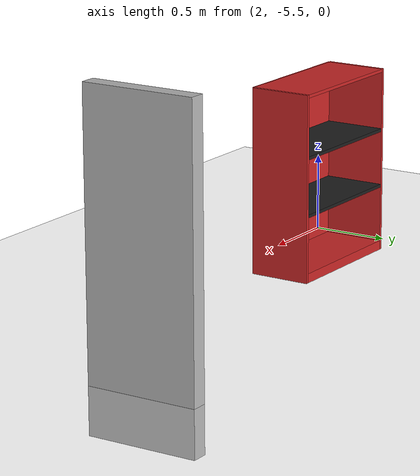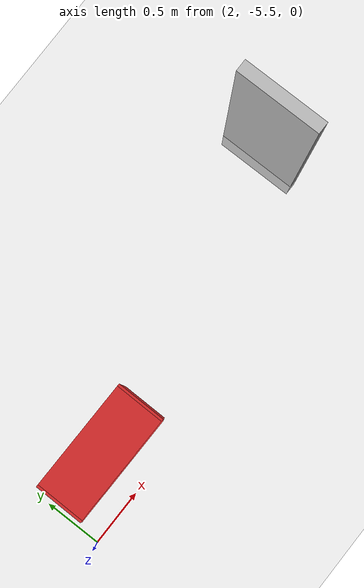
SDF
<sdf version="1.7">
 <world name="default">
  <model name="ground_plane">
   <static>1</static>
   <link name="link">
    <collision name="collision">
     <geometry><plane><normal>0 0 1</normal><size>100 100</size></plane></geometry>
     <surface><friction><ode><mu>100</mu><mu2>50</mu2></ode></friction></surface>
    </collision>
    <visual name="visual">
     <cast_shadows>0</cast_shadows>
     <geometry><plane><normal>0 0 1</normal><size>100 100</size></plane></geometry>
     <material><script><uri>file://media/s/scripts/gazebo.</uri><name>Gazebo/Grey</name></script></material>
    </visual>
   </link>
  </model>
  <model name="bookshelf">
   <static>1</static>
   <link name="link">
    <inertial><mass>1</mass></inertial>
    <collision name="back">
     <pose>0 0.005 0.6 0 -0 0</pose>
     <geometry><box><size>0.9 0.01 1.2</size></box></geometry>
    </collision>
    <visual name="visual1">
     <pose>0 0.005 0.6 0 -0 0</pose>
     <geometry><box><size>0.9 0.01 1.2</size></box></geometry>
     <material>
      <script><uri>file://media/materials/scripts/gazebo.material</uri><name>Gazebo/Red</name></script>
     </material>
    </visual>
    <collision name="left_side">
     <pose>0.45 -0.195 0.6 0 -0 0</pose>
     <geometry><box><size>0.02 0.4 1.2</size></box></geometry>
     <material>
      <script><uri>file://media/materials/scripts/gazebo.material</uri><name>Gazebo/Black</name></script>
     </material>
    </collision>
    <visual name="visual2">
     <pose>0.45 -0.195 0.6 0 -0 0</pose>
     <geometry><box><size>0.02 0.4 1.2</size></box></geometry>
     <material>
      <script><uri>file://media/materials/scripts/gazebo.material</uri><name>Gazebo/Red</name></script>
     </material>
    </visual>
    <collision name="right_side">
     <pose>-0.45 -0.195 0.6 0 -0 0</pose>
     <geometry><box><size>0.02 0.4 1.2</size></box></geometry>
    </collision>
    <visual name="visual3">
     <pose>-0.45 -0.195 0.6 0 -0 0</pose>
     <geometry><box><size>0.02 0.4 1.2</size></box></geometry>
     <material>
      <script><uri>file://media/materials/scripts/gazebo.material</uri><name>Gazebo/Red</name></script>
     </material>
    </visual>
    <collision name="bottom">
     <pose>0 -0.195 0.03 0 -0 0</pose>
     <geometry><box><size>0.88 0.4 0.06</size></box></geometry>
    </collision>
    <visual name="visual4">
     <pose>0 -0.195 0.03 0 -0 0</pose>
     <geometry><box><size>0.88 0.4 0.06</size></box></geometry>
     <material>
      <script><uri>file://media/materials/scripts/gazebo.material</uri><name>Gazebo/Red</name></script>
     </material>
    </visual>
    <collision name="top">
     <pose>0 -0.195 1.19 0 -0 0</pose>
     <geometry><box><size>0.88 0.4 0.02</size></box></geometry>
    </collision>
    <visual name="visual5">
     <pose>0 -0.195 1.19 0 -0 0</pose>
     <geometry><box><size>0.88 0.4 0.02</size></box></geometry>
     <material>
      <script><uri>file://media/materials/scripts/gazebo.material</uri><name>Gazebo/Red</name></script>
     </material>
    </visual>
    <collision name="low_shelf">
     <pose>0 -0.195 0.43 0 -0 0</pose>
     <geometry><box><size>0.88 0.4 0.02</size></box></geometry>
    </collision>
    <visual name="visual6">
     <pose>0 -0.195 0.43 0 -0 0</pose>
     <geometry><box><size>0.88 0.4 0.02</size></box></geometry>
     <material>
      <script><uri>file://media/materials/scripts/gazebo.material</uri><name>Gazebo/Black</name></script>
     </material>
    </visual>
    <collision name="high_shelf">
     <pose>0 -0.195 0.8 0 -0 0</pose>
     <geometry><box><size>0.88 0.4 0.02</size></box></geometry>
    </collision>
    <visual name="visual7">
     <pose>0 -0.195 0.8 0 -0 0</pose>
     <geometry><box><size>0.88 0.4 0.02</size></box></geometry>
     <material>
      <script><uri>file://media/materials/scripts/gazebo.material</uri><name>Gazebo/Black</name></script>
     </material>
    </visual>
   </link>
   <pose>2.66041 -5.29708 0 0 -0 3.12926</pose>
  </model>
  <model name="door">
   <link name="link">
    <visual name="visual">
     <geometry><box><size>0.1 0.7 2</size></box></geometry>
     <material>
      <script>
       <uri>https://fuel.gazebosim.org/1.0/sebbyjp/models/door_08x2m/1/files/material/script</uri>
       <uri>https://fuel.gazebosim.org/1.0/sebbyjp/models/door_08x2m/1/files/material/textures</uri>
       <name>Custom/door_08x2m</name>
      </script>
     </material>
    </visual>
   </link>
   <static>1</static>
   <pose>5.30811 -4.60356 0.703844 0 -0 0</pose>
  </model>
 </world>
</sdf>
